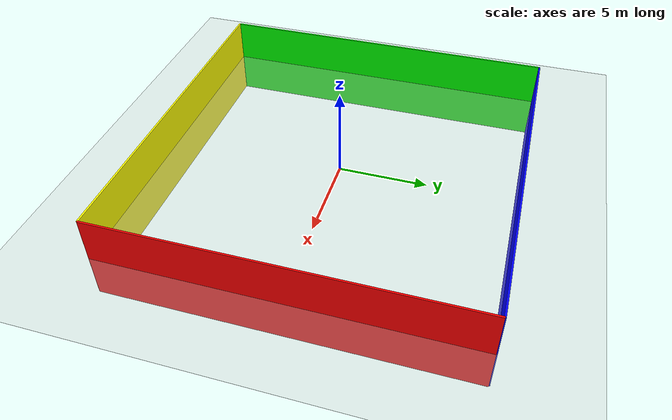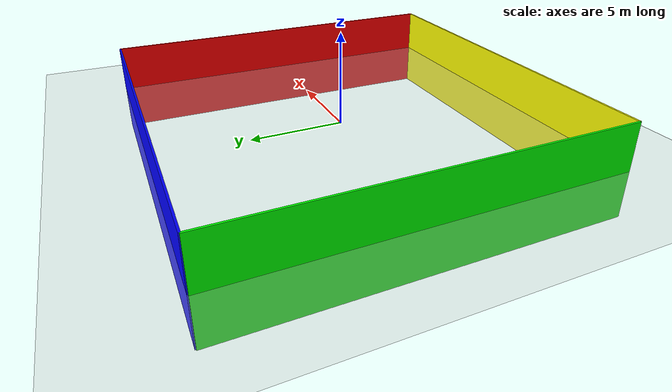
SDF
<?xml version="1.0"?>

<sdf version="1.6">
    <world name="box">
        <physics name="4ms" type="ignored">
            <max_step_size>0.004</max_step_size>
            <real_time_factor>1.0</real_time_factor>
        </physics>
        <plugin
            filename="ignition-gazebo-physics-system"
            name="ignition::gazebo::systems::Physics">
        </plugin>
        <plugin
            filename="ignition-gazebo-scene-broadcaster-system"
            name="ignition::gazebo::systems::SceneBroadcaster">
        </plugin>
        <plugin
            filename="ignition-gazebo-user-commands-system"
            name="ignition::gazebo::systems::UserCommands">
        </plugin>
        <plugin
            filename="ignition-gazebo-sensors-system"
            name="ignition::gazebo::systems::Sensors">
            <render_engine>ogre2</render_engine>
        </plugin>

        <light type="directional"
            name="sun">
            <cast_shadows>true</cast_shadows>
            <pose>0 0 10 0 0 0</pose>
            <diffuse>0.8 0.8 0.8 1</diffuse>
            <specular>0.2 0.2 0.2 1</specular>
            <attenuation>
                <range>1000</range>
                <constant>0.9</constant>
                <linear>0.01</linear>
                <quadratic>0.001</quadratic>
            </attenuation>
            <direction>-0.5 0.1 -0.9</direction>
        </light>

        <include>
            <uri>model://ground_plane</uri>
        </include>

        <model>
            <uri>model://pole</uri>
            <name> pole1</name>
            <pose>-4.97 -2.06 0 0 0 0</pose>
        </model>

        <model>
            <uri>model://pole</uri>
            <name> pole2</name>
            <pose>-1.27 -4.87 0 0 0 0</pose>
        </model>

        <model>
            <uri>model://pole</uri>
            <name> pole3</name>
            <pose>2.0 3.4 0 0 0 0</pose>
        </model>

        <model>
            <uri>model://pole</uri>
            <name> pole4</name>
            <pose>-2.97 3.71 0 0 0 0</pose>
        </model>

        <model>
            <uri>model://pole</uri>
            <name> pole5</name>
            <pose>-3.82 -2.08 0 0 0 0</pose>
        </model>

        <model>
            <uri>model://pole</uri>
            <name> pole6</name>
            <pose>-3.4 2.43 0 0 0 0</pose>
        </model>

        <model>
            <uri>model://pole</uri>
            <name> pole7</name>
            <pose>-0.16 -4.56 0 0 0 0</pose>
        </model>

        <model>
            <uri>model://pole</uri>
            <name> pole8</name>
            <pose>-3.8 -1.86 0 0 0 0</pose>
        </model>

        <model>
            <uri>model://pole</uri>
            <name> pole9</name>
            <pose>-1.45 0.74 0 0 0 0</pose>
        </model>

        <model>
            <uri>model://pole</uri>
            <name> pole10</name>
            <pose>-2.51 1.97 0 0 0 0</pose>
        </model>

        <model>
            <uri>model://pole</uri>
            <name> pole11</name>
            <pose>0.5 -4.93 0 0 0 0</pose>
        </model>

        <model>
            <uri>model://pole</uri>
            <name> pole12</name>
            <pose>1.47 -2.69 0 0 0 0</pose>
        </model>

        <model>
            <uri>model://pole</uri>
            <name> pole13</name>
            <pose>2.62 -3.93 0 0 0 0</pose>
        </model>

        <model>
            <uri>model://pole</uri>
            <name> pole14</name>
            <pose>2.75 0.0 0 0 0 0</pose>
        </model>

        <model>
            <uri>model://pole</uri>
            <name> pole15</name>
            <pose>-4.79 4.88 0 0 0 0</pose>
        </model>

        <model>
            <uri>model://pole</uri>
            <name> pole16</name>
            <pose>-2.51 4.92 0 0 0 0</pose>
        </model>

        <model>
            <uri>model://pole</uri>
            <name> pole17</name>
            <pose>1.99 3.88 0 0 0 0</pose>
        </model>

        <model>
            <uri>model://pole</uri>
            <name> pole18</name>
            <pose>-0.52 -2.16 0 0 0 0</pose>
        </model>

        <model>
            <uri>model://pole</uri>
            <name> pole19</name>
            <pose>3.88 1.27 0 0 0 0</pose>
        </model>

        <model>
            <uri>model://pole</uri>
            <name> pole20</name>
            <pose>-2.97 2.82 0 0 0 0</pose>
        </model>

        <model>
            <uri>model://pole</uri>
            <name> pole21</name>
            <pose>4.33 -4.54 0 0 0 0</pose>
        </model>

        <model>
            <uri>model://pole</uri>
            <name> pole22</name>
            <pose>2.77 -4.3 0 0 0 0</pose>
        </model>

        <model>
            <uri>model://pole</uri>
            <name> pole23</name>
            <pose>-4.15 -0.25 0 0 0 0</pose>
        </model>

        <model>
            <uri>model://pole</uri>
            <name> pole24</name>
            <pose>-3.98 3.66 0 0 0 0</pose>
        </model>

        <model>
            <uri>model://pole</uri>
            <name> pole25</name>
            <pose>-2.48 1.61 0 0 0 0</pose>
        </model>

        <model>
            <uri>model://pole</uri>
            <name> pole26</name>
            <pose>-2.38 -1.04 0 0 0 0</pose>
        </model>

        <model>
            <uri>model://pole</uri>
            <name> pole27</name>
            <pose>-1.62 4.71 0 0 0 0</pose>
        </model>

        <model>
            <uri>model://pole</uri>
            <name> pole28</name>
            <pose>-2.24 -1.34 0 0 0 0</pose>
        </model>

        <model>
            <uri>model://pole</uri>
            <name> pole29</name>
            <pose>3.52 -2.11 0 0 0 0</pose>
        </model>

        <model>
            <uri>model://pole</uri>
            <name> pole30</name>
            <pose>-3.45 1.59 0 0 0 0</pose>
        </model>

        <model>
            <uri>model://pole</uri>
            <name> pole31</name>
            <pose>1.99 -2.38 0 0 0 0</pose>
        </model>

        <model>
            <uri>model://pole</uri>
            <name> pole32</name>
            <pose>0.85 -0.52 0 0 0 0</pose>
        </model>

        <model>
            <uri>model://pole</uri>
            <name> pole33</name>
            <pose>-1.32 -0.37 0 0 0 0</pose>
        </model>

        <model>
            <uri>model://pole</uri>
            <name> pole34</name>
            <pose>4.87 3.44 0 0 0 0</pose>
        </model>

        <model>
            <uri>model://pole</uri>
            <name> pole35</name>
            <pose>3.19 3.91 0 0 0 0</pose>
        </model>

        <model>
            <uri>model://pole</uri>
            <name> pole36</name>
            <pose>-0.17 -2.34 0 0 0 0</pose>
        </model>

        <model>
            <uri>model://pole</uri>
            <name> pole37</name>
            <pose>0.91 4.94 0 0 0 0</pose>
        </model>

        <model>
            <uri>model://pole</uri>
            <name> pole38</name>
            <pose>-2.29 0.76 0 0 0 0</pose>
        </model>

        <model>
            <uri>model://pole</uri>
            <name> pole39</name>
            <pose>2.67 3.89 0 0 0 0</pose>
        </model>

        <model>
            <uri>model://pole</uri>
            <name> pole40</name>
            <pose>0.94 -0.4 0 0 0 0</pose>
        </model>

        <model>
            <uri>model://pole</uri>
            <name> pole41</name>
            <pose>3.98 -2.16 0 0 0 0</pose>
        </model>

        <model>
            <uri>model://pole</uri>
            <name> pole42</name>
            <pose>4.46 3.19 0 0 0 0</pose>
        </model>

        <model>
            <uri>model://pole</uri>
            <name> pole43</name>
            <pose>2.91 0.79 0 0 0 0</pose>
        </model>

        <model>
            <uri>model://pole</uri>
            <name> pole44</name>
            <pose>-4.42 2.88 0 0 0 0</pose>
        </model>

        <model>
            <uri>model://pole</uri>
            <name> pole45</name>
            <pose>2.53 1.84 0 0 0 0</pose>
        </model>

        <model>
            <uri>model://pole</uri>
            <name> pole46</name>
            <pose>-0.85 3.74 0 0 0 0</pose>
        </model>

        <model>
            <uri>model://pole</uri>
            <name> pole47</name>
            <pose>4.32 -4.27 0 0 0 0</pose>
        </model>

        <model>
            <uri>model://pole</uri>
            <name> pole48</name>
            <pose>-4.24 3.99 0 0 0 0</pose>
        </model>

        <model>
            <uri>model://pole</uri>
            <name> pole49</name>
            <pose>3.54 -1.21 0 0 0 0</pose>
        </model>

        <model>
            <uri>model://pole</uri>
            <name> pole50</name>
            <pose>3.17 0.08 0 0 0 0</pose>
        </model>

        <model name="+X">
            <pose>10 0 0 0 0 0</pose>
            <link name="link">

                <visual name='visual'>
                    <geometry>
                        <box>
                            <size>0.1 20 5</size>
                        </box>
                    </geometry>
                    <material>
                        <diffuse>1 0 0 1</diffuse>
                    </material>
                </visual>

                <collision name="collision">
                    <geometry>
                        <box>
                            <size>0.1 20 5</size>
                        </box>
                    </geometry>
                </collision>
            </link>

            <joint name="world_to_base_link=" type="fixed">
                <parent>world</parent>
                <child>link</child>
            </joint>
        </model>

        <model name="-X">
            <pose>-10 0 0 0 0 0</pose>
            <link name="link">

                <visual name='visual'>
                    <geometry>
                        <box>
                            <size>0.1 20 5</size>
                        </box>
                    </geometry>
                    <material>
                        <diffuse>0 1 0 1</diffuse>
                    </material>
                </visual>

                <collision name="collision">
                    <geometry>
                        <box>
                            <size>0.1 20 5</size>
                        </box>
                    </geometry>
                </collision>
            </link>

            <joint name="world_to_base_link=" type="fixed">
                <parent>world</parent>
                <child>link</child>
            </joint>
        </model>

        <model name="+Y">
            <pose>0 10 0 0 0 0</pose>
            <link name="link">

                <visual name='visual'>
                    <geometry>
                        <box>
                            <size>20 0.1 5</size>
                        </box>
                    </geometry>
                    <material>
                        <diffuse>0 0 1 1</diffuse>
                    </material>
                </visual>

                <collision name="collision">
                    <geometry>
                        <box>
                            <size>20 0.1 5</size>
                        </box>
                    </geometry>
                </collision>
            </link>

            <joint name="world_to_base_link=" type="fixed">
                <parent>world</parent>
                <child>link</child>
            </joint>
        </model>

        <model name="-Y">
            <pose>0 -10 0 0 0 0</pose>
            <link name="link">

                <visual name='visual'>
                    <geometry>
                        <box>
                            <size>20 0.1 5</size>
                        </box>
                    </geometry>
                    <material>
                        <diffuse>1 1 0 1</diffuse>
                    </material>
                </visual>

                <collision name="collision">
                    <geometry>
                        <box>
                            <size>20 0.1 5</size>
                        </box>
                    </geometry>
                </collision>
            </link>

            <joint name="world_to_base_link=" type="fixed">
                <parent>world</parent>
                <child>link</child>
            </joint>
        </model>

    </world>
</sdf>
